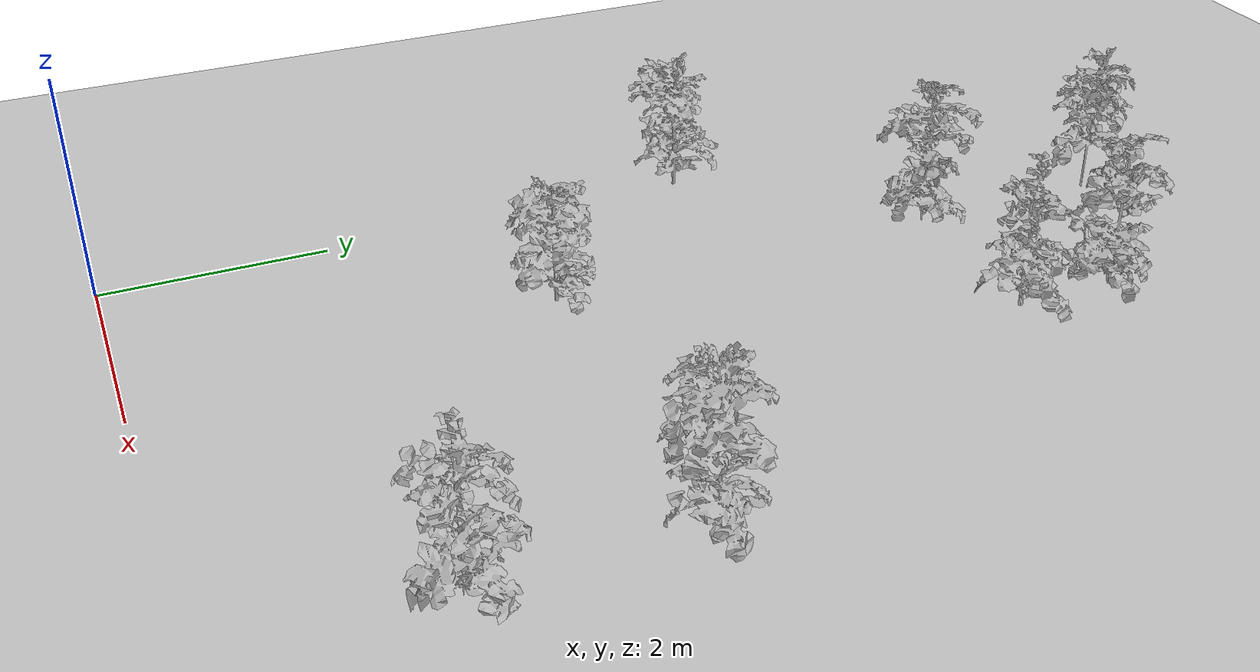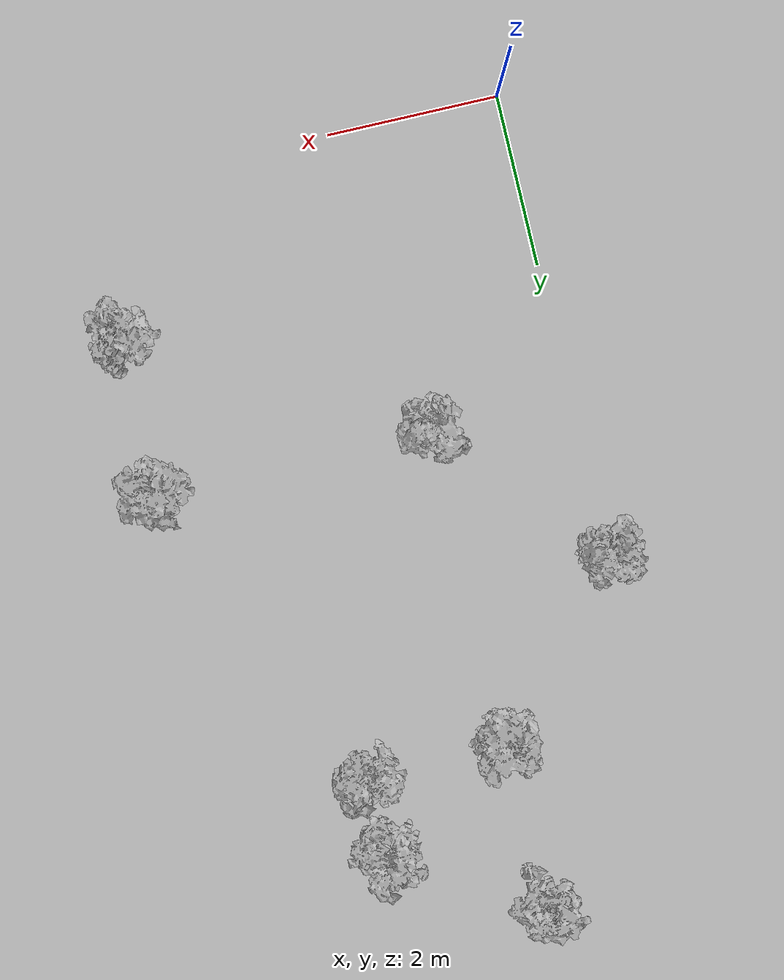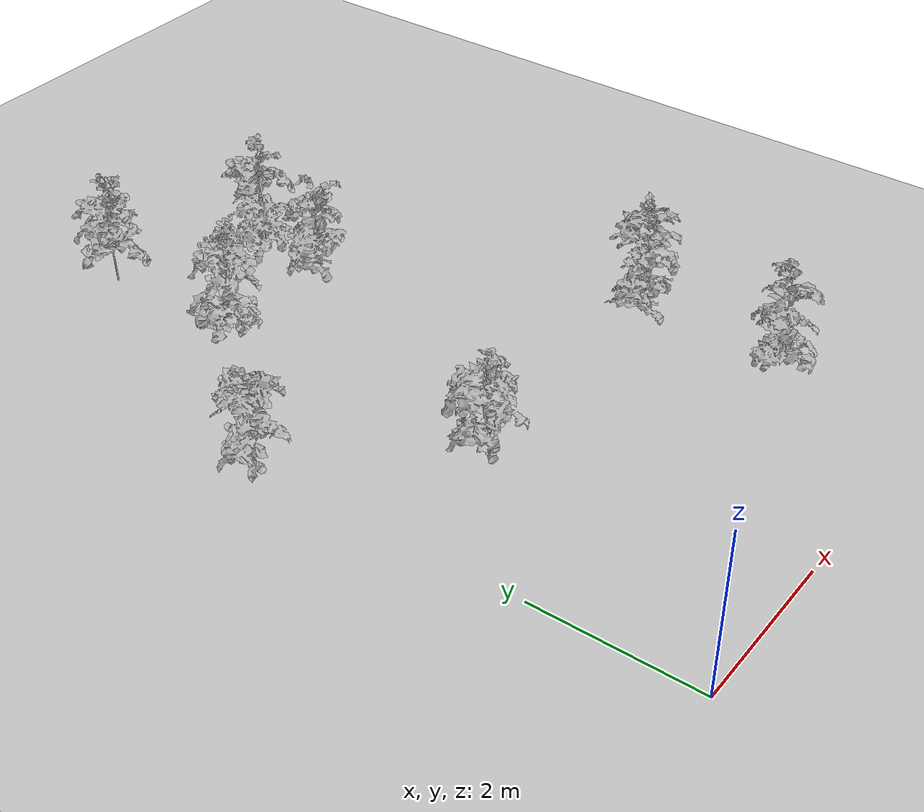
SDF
<sdf version="1.6">
 <world name="field">
  <atmosphere type="adiabatic"/>
  <gravity>0 0 -9.8</gravity>
  <physics name="default_physics" type="ode">
   <max_step_size>0.001</max_step_size>
   <real_time_factor>1</real_time_factor>
   <real_time_update_rate>1000</real_time_update_rate>
  </physics>
  <light name="sun" type="directional">
   <pose>0 0 10 0 0 0</pose>
   <diffuse>0.8 0.8 0.8 1</diffuse>
   <specular>0.8 0.8 0.8 1</specular>
   <attenuation>
    <range>1000</range>
    <constant>0.9</constant>
    <linear>0.01</linear>
    <quadratic>0.001</quadratic>
   </attenuation>
   <direction>-0.5 0.1 -0.9</direction>
  </light>
  <spherical_coordinates>
   <surface_model>EARTH_WGS84</surface_model>
   <latitude_deg>0</latitude_deg>
   <longitude_deg>0</longitude_deg>
   <elevation>0</elevation>
   <heading_deg>0</heading_deg>
  </spherical_coordinates>
  <scene><ambient>1 1 1 1</ambient><background>0.8 0.8 0.8 1</background><shadows>1</shadows></scene>
  <include><uri>model://ground</uri><name>ground</name><pose>5.0 5.0 0 0 0 0</pose></include>
  <include><uri>model://tomato_6</uri><name>tomato_6</name><pose>0.0 5.4 0 0 0 0</pose></include>
  <include><uri>model://tomato_16</uri><name>tomato_16</name><pose>1.6 3.6 0 0 0 0</pose></include>
  <include><uri>model://tomato_20</uri><name>tomato_20</name><pose>1.6 7.2 0 0 0 0</pose></include>
  <include><uri>model://tomato_22</uri><name>tomato_22</name><pose>1.6 9.0 0 0 0 0</pose></include>
  <include><uri>model://tomato_32</uri><name>tomato_32</name><pose>3.2 7.2 0 0 0 0</pose></include>
  <include><uri>model://tomato_33</uri><name>tomato_33</name><pose>3.2 8.1 0 0 0 0</pose></include>
  <include><uri>model://tomato_38</uri><name>tomato_38</name><pose>4.8 1.8 0 0 0 0</pose></include>
  <include><uri>model://tomato_40</uri><name>tomato_40</name><pose>4.8 3.6 0 0 0 0</pose></include>
 </world>
</sdf>

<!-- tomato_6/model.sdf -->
<sdf version="1.6">
  <model name="tomato_6">
    <static>true</static>
    <link name="link">
      <collision name="collision">
        <geometry>
          <box>
            <size>0.1 0.1 1</size>
          </box>
        </geometry>
      </collision>
      <visual name="branch">
        <geometry>
          <mesh>
            <uri>model://tomato_6/meshes/tomato.dae</uri>
            <submesh>
              <name>Branch1</name>
            </submesh>
          </mesh>
        </geometry>
        <material>
          <script>
            <uri>model://tomato_6/materials/scripts</uri>
            <name>Tomato/AG15brn1</name>
          </script>
        </material>
      </visual>
      <visual name="leaf1">
        <geometry>
          <mesh>
            <uri>model://tomato_6/meshes/tomato.dae</uri>
            <submesh>
              <name>Leaf1</name>
            </submesh>
          </mesh>
        </geometry>
        <material>
          <script>
            <uri>model://tomato_6/materials/scripts</uri>
            <name>Tomato/AG15lef1</name>
          </script>
        </material>
      </visual>
      <visual name="leaf2">
        <geometry>
          <mesh>
            <uri>model://tomato_6/meshes/tomato.dae</uri>
            <submesh>
              <name>Leaf2</name>
            </submesh>
          </mesh>
        </geometry>
        <material>
          <script>
            <uri>model://tomato_6/materials/scripts</uri>
            <name>Tomato/AG15lef2</name>
          </script>
        </material>
      </visual>
      <visual name="fruit1">
        <geometry>
          <mesh>
            <uri>model://tomato_6/meshes/tomato.dae</uri>
            <submesh>
              <name>Fruit1</name>
            </submesh>
          </mesh>
        </geometry>
        <material>
          <script>
            <uri>model://tomato_6/materials/scripts</uri>
            <name>Tomato/AG15frt1</name>
          </script>
        </material>
      </visual>
      <visual name="fruit2">
        <geometry>
          <mesh>
            <uri>model://tomato_6/meshes/tomato.dae</uri>
            <submesh>
              <name>Fruit2</name>
            </submesh>
          </mesh>
        </geometry>
        <material>
          <script>
            <uri>model://tomato_6/materials/scripts</uri>
            <name>Tomato/AG15frt2</name>
          </script>
        </material>
      </visual>
      <visual name="fruit3">
        <geometry>
          <mesh>
            <uri>model://tomato_6/meshes/tomato.dae</uri>
            <submesh>
              <name>Fruit3</name>
            </submesh>
          </mesh>
        </geometry>
        <material>
          <script>
            <uri>model://tomato_6/materials/scripts</uri>
            <name>Tomato/AG15frt3</name>
          </script>
        </material>
      </visual>
      <visual name="fruit4">
        <geometry>
          <mesh>
            <uri>model://tomato_6/meshes/tomato.dae</uri>
            <submesh>
              <name>Fruit4</name>
            </submesh>
          </mesh>
        </geometry>
        <material>
          <script>
            <uri>model://tomato_6/materials/scripts</uri>
            <name>Tomato/AG15frt4</name>
          </script>
        </material>
      </visual>
      <visual name="blossom1">
        <geometry>
          <mesh>
            <uri>model://tomato_6/meshes/tomato.dae</uri>
            <submesh>
              <name>Blossom1</name>
            </submesh>
          </mesh>
        </geometry>
        <material>
          <script>
            <uri>model://tomato_6/materials/scripts</uri>
            <name>Tomato/AG15blo1</name>
          </script>
        </material>
      </visual>
      <visual name="blossom2">
        <geometry>
          <mesh>
            <uri>model://tomato_6/meshes/tomato.dae</uri>
            <submesh>
              <name>Blossom2</name>
            </submesh>
          </mesh>
        </geometry>
        <material>
          <script>
            <uri>model://tomato_6/materials/scripts</uri>
            <name>Tomato/AG15blo2</name>
          </script>
        </material>
      </visual>
      <visual name="blossom3">
        <geometry>
          <mesh>
            <uri>model://tomato_6/meshes/tomato.dae</uri>
            <submesh>
              <name>Blossom3</name>
            </submesh>
          </mesh>
        </geometry>
        <material>
          <script>
            <uri>model://tomato_6/materials/scripts</uri>
            <name>Tomato/AG15blo3</name>
          </script>
        </material>
      </visual>
    </link>
  </model>
</sdf>

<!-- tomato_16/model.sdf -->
<sdf version="1.6">
  <model name="tomato_16">
    <static>true</static>
    <link name="link">
      <collision name="collision">
        <geometry>
          <box>
            <size>0.1 0.1 1</size>
          </box>
        </geometry>
      </collision>
      <visual name="branch">
        <geometry>
          <mesh>
            <uri>model://tomato_16/meshes/tomato.dae</uri>
            <submesh>
              <name>Branch1</name>
            </submesh>
          </mesh>
        </geometry>
        <material>
          <script>
            <uri>model://tomato_16/materials/scripts</uri>
            <name>Tomato/AG15brn1</name>
          </script>
        </material>
      </visual>
      <visual name="leaf1">
        <geometry>
          <mesh>
            <uri>model://tomato_16/meshes/tomato.dae</uri>
            <submesh>
              <name>Leaf1</name>
            </submesh>
          </mesh>
        </geometry>
        <material>
          <script>
            <uri>model://tomato_16/materials/scripts</uri>
            <name>Tomato/AG15lef1</name>
          </script>
        </material>
      </visual>
      <visual name="leaf2">
        <geometry>
          <mesh>
            <uri>model://tomato_16/meshes/tomato.dae</uri>
            <submesh>
              <name>Leaf2</name>
            </submesh>
          </mesh>
        </geometry>
        <material>
          <script>
            <uri>model://tomato_16/materials/scripts</uri>
            <name>Tomato/AG15lef2</name>
          </script>
        </material>
      </visual>
      <visual name="fruit1">
        <geometry>
          <mesh>
            <uri>model://tomato_16/meshes/tomato.dae</uri>
            <submesh>
              <name>Fruit1</name>
            </submesh>
          </mesh>
        </geometry>
        <material>
          <script>
            <uri>model://tomato_16/materials/scripts</uri>
            <name>Tomato/AG15frt1</name>
          </script>
        </material>
      </visual>
      <visual name="fruit2">
        <geometry>
          <mesh>
            <uri>model://tomato_16/meshes/tomato.dae</uri>
            <submesh>
              <name>Fruit2</name>
            </submesh>
          </mesh>
        </geometry>
        <material>
          <script>
            <uri>model://tomato_16/materials/scripts</uri>
            <name>Tomato/AG15frt2</name>
          </script>
        </material>
      </visual>
      <visual name="fruit3">
        <geometry>
          <mesh>
            <uri>model://tomato_16/meshes/tomato.dae</uri>
            <submesh>
              <name>Fruit3</name>
            </submesh>
          </mesh>
        </geometry>
        <material>
          <script>
            <uri>model://tomato_16/materials/scripts</uri>
            <name>Tomato/AG15frt3</name>
          </script>
        </material>
      </visual>
      <visual name="fruit4">
        <geometry>
          <mesh>
            <uri>model://tomato_16/meshes/tomato.dae</uri>
            <submesh>
              <name>Fruit4</name>
            </submesh>
          </mesh>
        </geometry>
        <material>
          <script>
            <uri>model://tomato_16/materials/scripts</uri>
            <name>Tomato/AG15frt4</name>
          </script>
        </material>
      </visual>
      <visual name="blossom1">
        <geometry>
          <mesh>
            <uri>model://tomato_16/meshes/tomato.dae</uri>
            <submesh>
              <name>Blossom1</name>
            </submesh>
          </mesh>
        </geometry>
        <material>
          <script>
            <uri>model://tomato_16/materials/scripts</uri>
            <name>Tomato/AG15blo1</name>
          </script>
        </material>
      </visual>
      <visual name="blossom2">
        <geometry>
          <mesh>
            <uri>model://tomato_16/meshes/tomato.dae</uri>
            <submesh>
              <name>Blossom2</name>
            </submesh>
          </mesh>
        </geometry>
        <material>
          <script>
            <uri>model://tomato_16/materials/scripts</uri>
            <name>Tomato/AG15blo2</name>
          </script>
        </material>
      </visual>
      <visual name="blossom3">
        <geometry>
          <mesh>
            <uri>model://tomato_16/meshes/tomato.dae</uri>
            <submesh>
              <name>Blossom3</name>
            </submesh>
          </mesh>
        </geometry>
        <material>
          <script>
            <uri>model://tomato_16/materials/scripts</uri>
            <name>Tomato/AG15blo3</name>
          </script>
        </material>
      </visual>
    </link>
  </model>
</sdf>

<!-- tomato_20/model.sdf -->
<sdf version="1.6">
  <model name="tomato_20">
    <static>true</static>
    <link name="link">
      <collision name="collision">
        <geometry>
          <box>
            <size>0.1 0.1 1</size>
          </box>
        </geometry>
      </collision>
      <visual name="branch">
        <geometry>
          <mesh>
            <uri>model://tomato_20/meshes/tomato.dae</uri>
            <submesh>
              <name>Branch1</name>
            </submesh>
          </mesh>
        </geometry>
        <material>
          <script>
            <uri>model://tomato_20/materials/scripts</uri>
            <name>Tomato/AG15brn1</name>
          </script>
        </material>
      </visual>
      <visual name="leaf1">
        <geometry>
          <mesh>
            <uri>model://tomato_20/meshes/tomato.dae</uri>
            <submesh>
              <name>Leaf1</name>
            </submesh>
          </mesh>
        </geometry>
        <material>
          <script>
            <uri>model://tomato_20/materials/scripts</uri>
            <name>Tomato/AG15lef1</name>
          </script>
        </material>
      </visual>
      <visual name="leaf2">
        <geometry>
          <mesh>
            <uri>model://tomato_20/meshes/tomato.dae</uri>
            <submesh>
              <name>Leaf2</name>
            </submesh>
          </mesh>
        </geometry>
        <material>
          <script>
            <uri>model://tomato_20/materials/scripts</uri>
            <name>Tomato/AG15lef2</name>
          </script>
        </material>
      </visual>
      <visual name="fruit1">
        <geometry>
          <mesh>
            <uri>model://tomato_20/meshes/tomato.dae</uri>
            <submesh>
              <name>Fruit1</name>
            </submesh>
          </mesh>
        </geometry>
        <material>
          <script>
            <uri>model://tomato_20/materials/scripts</uri>
            <name>Tomato/AG15frt1</name>
          </script>
        </material>
      </visual>
      <visual name="fruit2">
        <geometry>
          <mesh>
            <uri>model://tomato_20/meshes/tomato.dae</uri>
            <submesh>
              <name>Fruit2</name>
            </submesh>
          </mesh>
        </geometry>
        <material>
          <script>
            <uri>model://tomato_20/materials/scripts</uri>
            <name>Tomato/AG15frt2</name>
          </script>
        </material>
      </visual>
      <visual name="fruit3">
        <geometry>
          <mesh>
            <uri>model://tomato_20/meshes/tomato.dae</uri>
            <submesh>
              <name>Fruit3</name>
            </submesh>
          </mesh>
        </geometry>
        <material>
          <script>
            <uri>model://tomato_20/materials/scripts</uri>
            <name>Tomato/AG15frt3</name>
          </script>
        </material>
      </visual>
      <visual name="fruit4">
        <geometry>
          <mesh>
            <uri>model://tomato_20/meshes/tomato.dae</uri>
            <submesh>
              <name>Fruit4</name>
            </submesh>
          </mesh>
        </geometry>
        <material>
          <script>
            <uri>model://tomato_20/materials/scripts</uri>
            <name>Tomato/AG15frt4</name>
          </script>
        </material>
      </visual>
      <visual name="blossom1">
        <geometry>
          <mesh>
            <uri>model://tomato_20/meshes/tomato.dae</uri>
            <submesh>
              <name>Blossom1</name>
            </submesh>
          </mesh>
        </geometry>
        <material>
          <script>
            <uri>model://tomato_20/materials/scripts</uri>
            <name>Tomato/AG15blo1</name>
          </script>
        </material>
      </visual>
      <visual name="blossom2">
        <geometry>
          <mesh>
            <uri>model://tomato_20/meshes/tomato.dae</uri>
            <submesh>
              <name>Blossom2</name>
            </submesh>
          </mesh>
        </geometry>
        <material>
          <script>
            <uri>model://tomato_20/materials/scripts</uri>
            <name>Tomato/AG15blo2</name>
          </script>
        </material>
      </visual>
      <visual name="blossom3">
        <geometry>
          <mesh>
            <uri>model://tomato_20/meshes/tomato.dae</uri>
            <submesh>
              <name>Blossom3</name>
            </submesh>
          </mesh>
        </geometry>
        <material>
          <script>
            <uri>model://tomato_20/materials/scripts</uri>
            <name>Tomato/AG15blo3</name>
          </script>
        </material>
      </visual>
    </link>
  </model>
</sdf>

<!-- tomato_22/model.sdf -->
<sdf version="1.6">
  <model name="tomato_22">
    <static>true</static>
    <link name="link">
      <collision name="collision">
        <geometry>
          <box>
            <size>0.1 0.1 1</size>
          </box>
        </geometry>
      </collision>
      <visual name="branch">
        <geometry>
          <mesh>
            <uri>model://tomato_22/meshes/tomato.dae</uri>
            <submesh>
              <name>Branch1</name>
            </submesh>
          </mesh>
        </geometry>
        <material>
          <script>
            <uri>model://tomato_22/materials/scripts</uri>
            <name>Tomato/AG15brn1</name>
          </script>
        </material>
      </visual>
      <visual name="leaf1">
        <geometry>
          <mesh>
            <uri>model://tomato_22/meshes/tomato.dae</uri>
            <submesh>
              <name>Leaf1</name>
            </submesh>
          </mesh>
        </geometry>
        <material>
          <script>
            <uri>model://tomato_22/materials/scripts</uri>
            <name>Tomato/AG15lef1</name>
          </script>
        </material>
      </visual>
      <visual name="leaf2">
        <geometry>
          <mesh>
            <uri>model://tomato_22/meshes/tomato.dae</uri>
            <submesh>
              <name>Leaf2</name>
            </submesh>
          </mesh>
        </geometry>
        <material>
          <script>
            <uri>model://tomato_22/materials/scripts</uri>
            <name>Tomato/AG15lef2</name>
          </script>
        </material>
      </visual>
      <visual name="fruit1">
        <geometry>
          <mesh>
            <uri>model://tomato_22/meshes/tomato.dae</uri>
            <submesh>
              <name>Fruit1</name>
            </submesh>
          </mesh>
        </geometry>
        <material>
          <script>
            <uri>model://tomato_22/materials/scripts</uri>
            <name>Tomato/AG15frt1</name>
          </script>
        </material>
      </visual>
      <visual name="fruit2">
        <geometry>
          <mesh>
            <uri>model://tomato_22/meshes/tomato.dae</uri>
            <submesh>
              <name>Fruit2</name>
            </submesh>
          </mesh>
        </geometry>
        <material>
          <script>
            <uri>model://tomato_22/materials/scripts</uri>
            <name>Tomato/AG15frt2</name>
          </script>
        </material>
      </visual>
      <visual name="fruit3">
        <geometry>
          <mesh>
            <uri>model://tomato_22/meshes/tomato.dae</uri>
            <submesh>
              <name>Fruit3</name>
            </submesh>
          </mesh>
        </geometry>
        <material>
          <script>
            <uri>model://tomato_22/materials/scripts</uri>
            <name>Tomato/AG15frt3</name>
          </script>
        </material>
      </visual>
      <visual name="fruit4">
        <geometry>
          <mesh>
            <uri>model://tomato_22/meshes/tomato.dae</uri>
            <submesh>
              <name>Fruit4</name>
            </submesh>
          </mesh>
        </geometry>
        <material>
          <script>
            <uri>model://tomato_22/materials/scripts</uri>
            <name>Tomato/AG15frt4</name>
          </script>
        </material>
      </visual>
      <visual name="blossom1">
        <geometry>
          <mesh>
            <uri>model://tomato_22/meshes/tomato.dae</uri>
            <submesh>
              <name>Blossom1</name>
            </submesh>
          </mesh>
        </geometry>
        <material>
          <script>
            <uri>model://tomato_22/materials/scripts</uri>
            <name>Tomato/AG15blo1</name>
          </script>
        </material>
      </visual>
      <visual name="blossom2">
        <geometry>
          <mesh>
            <uri>model://tomato_22/meshes/tomato.dae</uri>
            <submesh>
              <name>Blossom2</name>
            </submesh>
          </mesh>
        </geometry>
        <material>
          <script>
            <uri>model://tomato_22/materials/scripts</uri>
            <name>Tomato/AG15blo2</name>
          </script>
        </material>
      </visual>
      <visual name="blossom3">
        <geometry>
          <mesh>
            <uri>model://tomato_22/meshes/tomato.dae</uri>
            <submesh>
              <name>Blossom3</name>
            </submesh>
          </mesh>
        </geometry>
        <material>
          <script>
            <uri>model://tomato_22/materials/scripts</uri>
            <name>Tomato/AG15blo3</name>
          </script>
        </material>
      </visual>
    </link>
  </model>
</sdf>

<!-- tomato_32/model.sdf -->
<sdf version="1.6">
  <model name="tomato_32">
    <static>true</static>
    <link name="link">
      <collision name="collision">
        <geometry>
          <box>
            <size>0.1 0.1 1</size>
          </box>
        </geometry>
      </collision>
      <visual name="branch">
        <geometry>
          <mesh>
            <uri>model://tomato_32/meshes/tomato.dae</uri>
            <submesh>
              <name>Branch1</name>
            </submesh>
          </mesh>
        </geometry>
        <material>
          <script>
            <uri>model://tomato_32/materials/scripts</uri>
            <name>Tomato/AG15brn1</name>
          </script>
        </material>
      </visual>
      <visual name="leaf1">
        <geometry>
          <mesh>
            <uri>model://tomato_32/meshes/tomato.dae</uri>
            <submesh>
              <name>Leaf1</name>
            </submesh>
          </mesh>
        </geometry>
        <material>
          <script>
            <uri>model://tomato_32/materials/scripts</uri>
            <name>Tomato/AG15lef1</name>
          </script>
        </material>
      </visual>
      <visual name="leaf2">
        <geometry>
          <mesh>
            <uri>model://tomato_32/meshes/tomato.dae</uri>
            <submesh>
              <name>Leaf2</name>
            </submesh>
          </mesh>
        </geometry>
        <material>
          <script>
            <uri>model://tomato_32/materials/scripts</uri>
            <name>Tomato/AG15lef2</name>
          </script>
        </material>
      </visual>
      <visual name="fruit1">
        <geometry>
          <mesh>
            <uri>model://tomato_32/meshes/tomato.dae</uri>
            <submesh>
              <name>Fruit1</name>
            </submesh>
          </mesh>
        </geometry>
        <material>
          <script>
            <uri>model://tomato_32/materials/scripts</uri>
            <name>Tomato/AG15frt1</name>
          </script>
        </material>
      </visual>
      <visual name="fruit2">
        <geometry>
          <mesh>
            <uri>model://tomato_32/meshes/tomato.dae</uri>
            <submesh>
              <name>Fruit2</name>
            </submesh>
          </mesh>
        </geometry>
        <material>
          <script>
            <uri>model://tomato_32/materials/scripts</uri>
            <name>Tomato/AG15frt2</name>
          </script>
        </material>
      </visual>
      <visual name="fruit3">
        <geometry>
          <mesh>
            <uri>model://tomato_32/meshes/tomato.dae</uri>
            <submesh>
              <name>Fruit3</name>
            </submesh>
          </mesh>
        </geometry>
        <material>
          <script>
            <uri>model://tomato_32/materials/scripts</uri>
            <name>Tomato/AG15frt3</name>
          </script>
        </material>
      </visual>
      <visual name="fruit4">
        <geometry>
          <mesh>
            <uri>model://tomato_32/meshes/tomato.dae</uri>
            <submesh>
              <name>Fruit4</name>
            </submesh>
          </mesh>
        </geometry>
        <material>
          <script>
            <uri>model://tomato_32/materials/scripts</uri>
            <name>Tomato/AG15frt4</name>
          </script>
        </material>
      </visual>
      <visual name="blossom1">
        <geometry>
          <mesh>
            <uri>model://tomato_32/meshes/tomato.dae</uri>
            <submesh>
              <name>Blossom1</name>
            </submesh>
          </mesh>
        </geometry>
        <material>
          <script>
            <uri>model://tomato_32/materials/scripts</uri>
            <name>Tomato/AG15blo1</name>
          </script>
        </material>
      </visual>
      <visual name="blossom2">
        <geometry>
          <mesh>
            <uri>model://tomato_32/meshes/tomato.dae</uri>
            <submesh>
              <name>Blossom2</name>
            </submesh>
          </mesh>
        </geometry>
        <material>
          <script>
            <uri>model://tomato_32/materials/scripts</uri>
            <name>Tomato/AG15blo2</name>
          </script>
        </material>
      </visual>
      <visual name="blossom3">
        <geometry>
          <mesh>
            <uri>model://tomato_32/meshes/tomato.dae</uri>
            <submesh>
              <name>Blossom3</name>
            </submesh>
          </mesh>
        </geometry>
        <material>
          <script>
            <uri>model://tomato_32/materials/scripts</uri>
            <name>Tomato/AG15blo3</name>
          </script>
        </material>
      </visual>
    </link>
  </model>
</sdf>

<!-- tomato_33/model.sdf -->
<sdf version="1.6">
  <model name="tomato_33">
    <static>true</static>
    <link name="link">
      <collision name="collision">
        <geometry>
          <box>
            <size>0.1 0.1 1</size>
          </box>
        </geometry>
      </collision>
      <visual name="branch">
        <geometry>
          <mesh>
            <uri>model://tomato_33/meshes/tomato.dae</uri>
            <submesh>
              <name>Branch1</name>
            </submesh>
          </mesh>
        </geometry>
        <material>
          <script>
            <uri>model://tomato_33/materials/scripts</uri>
            <name>Tomato/AG15brn1</name>
          </script>
        </material>
      </visual>
      <visual name="leaf1">
        <geometry>
          <mesh>
            <uri>model://tomato_33/meshes/tomato.dae</uri>
            <submesh>
              <name>Leaf1</name>
            </submesh>
          </mesh>
        </geometry>
        <material>
          <script>
            <uri>model://tomato_33/materials/scripts</uri>
            <name>Tomato/AG15lef1</name>
          </script>
        </material>
      </visual>
      <visual name="leaf2">
        <geometry>
          <mesh>
            <uri>model://tomato_33/meshes/tomato.dae</uri>
            <submesh>
              <name>Leaf2</name>
            </submesh>
          </mesh>
        </geometry>
        <material>
          <script>
            <uri>model://tomato_33/materials/scripts</uri>
            <name>Tomato/AG15lef2</name>
          </script>
        </material>
      </visual>
      <visual name="fruit1">
        <geometry>
          <mesh>
            <uri>model://tomato_33/meshes/tomato.dae</uri>
            <submesh>
              <name>Fruit1</name>
            </submesh>
          </mesh>
        </geometry>
        <material>
          <script>
            <uri>model://tomato_33/materials/scripts</uri>
            <name>Tomato/AG15frt1</name>
          </script>
        </material>
      </visual>
      <visual name="fruit2">
        <geometry>
          <mesh>
            <uri>model://tomato_33/meshes/tomato.dae</uri>
            <submesh>
              <name>Fruit2</name>
            </submesh>
          </mesh>
        </geometry>
        <material>
          <script>
            <uri>model://tomato_33/materials/scripts</uri>
            <name>Tomato/AG15frt2</name>
          </script>
        </material>
      </visual>
      <visual name="fruit3">
        <geometry>
          <mesh>
            <uri>model://tomato_33/meshes/tomato.dae</uri>
            <submesh>
              <name>Fruit3</name>
            </submesh>
          </mesh>
        </geometry>
        <material>
          <script>
            <uri>model://tomato_33/materials/scripts</uri>
            <name>Tomato/AG15frt3</name>
          </script>
        </material>
      </visual>
      <visual name="fruit4">
        <geometry>
          <mesh>
            <uri>model://tomato_33/meshes/tomato.dae</uri>
            <submesh>
              <name>Fruit4</name>
            </submesh>
          </mesh>
        </geometry>
        <material>
          <script>
            <uri>model://tomato_33/materials/scripts</uri>
            <name>Tomato/AG15frt4</name>
          </script>
        </material>
      </visual>
      <visual name="blossom1">
        <geometry>
          <mesh>
            <uri>model://tomato_33/meshes/tomato.dae</uri>
            <submesh>
              <name>Blossom1</name>
            </submesh>
          </mesh>
        </geometry>
        <material>
          <script>
            <uri>model://tomato_33/materials/scripts</uri>
            <name>Tomato/AG15blo1</name>
          </script>
        </material>
      </visual>
      <visual name="blossom2">
        <geometry>
          <mesh>
            <uri>model://tomato_33/meshes/tomato.dae</uri>
            <submesh>
              <name>Blossom2</name>
            </submesh>
          </mesh>
        </geometry>
        <material>
          <script>
            <uri>model://tomato_33/materials/scripts</uri>
            <name>Tomato/AG15blo2</name>
          </script>
        </material>
      </visual>
      <visual name="blossom3">
        <geometry>
          <mesh>
            <uri>model://tomato_33/meshes/tomato.dae</uri>
            <submesh>
              <name>Blossom3</name>
            </submesh>
          </mesh>
        </geometry>
        <material>
          <script>
            <uri>model://tomato_33/materials/scripts</uri>
            <name>Tomato/AG15blo3</name>
          </script>
        </material>
      </visual>
    </link>
  </model>
</sdf>

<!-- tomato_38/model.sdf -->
<sdf version="1.6">
  <model name="tomato_38">
    <static>true</static>
    <link name="link">
      <collision name="collision">
        <geometry>
          <box>
            <size>0.1 0.1 1</size>
          </box>
        </geometry>
      </collision>
      <visual name="branch">
        <geometry>
          <mesh>
            <uri>model://tomato_38/meshes/tomato.dae</uri>
            <submesh>
              <name>Branch1</name>
            </submesh>
          </mesh>
        </geometry>
        <material>
          <script>
            <uri>model://tomato_38/materials/scripts</uri>
            <name>Tomato/AG15brn1</name>
          </script>
        </material>
      </visual>
      <visual name="leaf1">
        <geometry>
          <mesh>
            <uri>model://tomato_38/meshes/tomato.dae</uri>
            <submesh>
              <name>Leaf1</name>
            </submesh>
          </mesh>
        </geometry>
        <material>
          <script>
            <uri>model://tomato_38/materials/scripts</uri>
            <name>Tomato/AG15lef1</name>
          </script>
        </material>
      </visual>
      <visual name="leaf2">
        <geometry>
          <mesh>
            <uri>model://tomato_38/meshes/tomato.dae</uri>
            <submesh>
              <name>Leaf2</name>
            </submesh>
          </mesh>
        </geometry>
        <material>
          <script>
            <uri>model://tomato_38/materials/scripts</uri>
            <name>Tomato/AG15lef2</name>
          </script>
        </material>
      </visual>
      <visual name="fruit1">
        <geometry>
          <mesh>
            <uri>model://tomato_38/meshes/tomato.dae</uri>
            <submesh>
              <name>Fruit1</name>
            </submesh>
          </mesh>
        </geometry>
        <material>
          <script>
            <uri>model://tomato_38/materials/scripts</uri>
            <name>Tomato/AG15frt1</name>
          </script>
        </material>
      </visual>
      <visual name="fruit2">
        <geometry>
          <mesh>
            <uri>model://tomato_38/meshes/tomato.dae</uri>
            <submesh>
              <name>Fruit2</name>
            </submesh>
          </mesh>
        </geometry>
        <material>
          <script>
            <uri>model://tomato_38/materials/scripts</uri>
            <name>Tomato/AG15frt2</name>
          </script>
        </material>
      </visual>
      <visual name="fruit3">
        <geometry>
          <mesh>
            <uri>model://tomato_38/meshes/tomato.dae</uri>
            <submesh>
              <name>Fruit3</name>
            </submesh>
          </mesh>
        </geometry>
        <material>
          <script>
            <uri>model://tomato_38/materials/scripts</uri>
            <name>Tomato/AG15frt3</name>
          </script>
        </material>
      </visual>
      <visual name="fruit4">
        <geometry>
          <mesh>
            <uri>model://tomato_38/meshes/tomato.dae</uri>
            <submesh>
              <name>Fruit4</name>
            </submesh>
          </mesh>
        </geometry>
        <material>
          <script>
            <uri>model://tomato_38/materials/scripts</uri>
            <name>Tomato/AG15frt4</name>
          </script>
        </material>
      </visual>
      <visual name="blossom1">
        <geometry>
          <mesh>
            <uri>model://tomato_38/meshes/tomato.dae</uri>
            <submesh>
              <name>Blossom1</name>
            </submesh>
          </mesh>
        </geometry>
        <material>
          <script>
            <uri>model://tomato_38/materials/scripts</uri>
            <name>Tomato/AG15blo1</name>
          </script>
        </material>
      </visual>
      <visual name="blossom2">
        <geometry>
          <mesh>
            <uri>model://tomato_38/meshes/tomato.dae</uri>
            <submesh>
              <name>Blossom2</name>
            </submesh>
          </mesh>
        </geometry>
        <material>
          <script>
            <uri>model://tomato_38/materials/scripts</uri>
            <name>Tomato/AG15blo2</name>
          </script>
        </material>
      </visual>
      <visual name="blossom3">
        <geometry>
          <mesh>
            <uri>model://tomato_38/meshes/tomato.dae</uri>
            <submesh>
              <name>Blossom3</name>
            </submesh>
          </mesh>
        </geometry>
        <material>
          <script>
            <uri>model://tomato_38/materials/scripts</uri>
            <name>Tomato/AG15blo3</name>
          </script>
        </material>
      </visual>
    </link>
  </model>
</sdf>

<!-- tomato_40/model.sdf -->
<sdf version="1.6">
  <model name="tomato_40">
    <static>true</static>
    <link name="link">
      <collision name="collision">
        <geometry>
          <box>
            <size>0.1 0.1 1</size>
          </box>
        </geometry>
      </collision>
      <visual name="branch">
        <geometry>
          <mesh>
            <uri>model://tomato_40/meshes/tomato.dae</uri>
            <submesh>
              <name>Branch1</name>
            </submesh>
          </mesh>
        </geometry>
        <material>
          <script>
            <uri>model://tomato_40/materials/scripts</uri>
            <name>Tomato/AG15brn1</name>
          </script>
        </material>
      </visual>
      <visual name="leaf1">
        <geometry>
          <mesh>
            <uri>model://tomato_40/meshes/tomato.dae</uri>
            <submesh>
              <name>Leaf1</name>
            </submesh>
          </mesh>
        </geometry>
        <material>
          <script>
            <uri>model://tomato_40/materials/scripts</uri>
            <name>Tomato/AG15lef1</name>
          </script>
        </material>
      </visual>
      <visual name="leaf2">
        <geometry>
          <mesh>
            <uri>model://tomato_40/meshes/tomato.dae</uri>
            <submesh>
              <name>Leaf2</name>
            </submesh>
          </mesh>
        </geometry>
        <material>
          <script>
            <uri>model://tomato_40/materials/scripts</uri>
            <name>Tomato/AG15lef2</name>
          </script>
        </material>
      </visual>
      <visual name="fruit1">
        <geometry>
          <mesh>
            <uri>model://tomato_40/meshes/tomato.dae</uri>
            <submesh>
              <name>Fruit1</name>
            </submesh>
          </mesh>
        </geometry>
        <material>
          <script>
            <uri>model://tomato_40/materials/scripts</uri>
            <name>Tomato/AG15frt1</name>
          </script>
        </material>
      </visual>
      <visual name="fruit2">
        <geometry>
          <mesh>
            <uri>model://tomato_40/meshes/tomato.dae</uri>
            <submesh>
              <name>Fruit2</name>
            </submesh>
          </mesh>
        </geometry>
        <material>
          <script>
            <uri>model://tomato_40/materials/scripts</uri>
            <name>Tomato/AG15frt2</name>
          </script>
        </material>
      </visual>
      <visual name="fruit3">
        <geometry>
          <mesh>
            <uri>model://tomato_40/meshes/tomato.dae</uri>
            <submesh>
              <name>Fruit3</name>
            </submesh>
          </mesh>
        </geometry>
        <material>
          <script>
            <uri>model://tomato_40/materials/scripts</uri>
            <name>Tomato/AG15frt3</name>
          </script>
        </material>
      </visual>
      <visual name="fruit4">
        <geometry>
          <mesh>
            <uri>model://tomato_40/meshes/tomato.dae</uri>
            <submesh>
              <name>Fruit4</name>
            </submesh>
          </mesh>
        </geometry>
        <material>
          <script>
            <uri>model://tomato_40/materials/scripts</uri>
            <name>Tomato/AG15frt4</name>
          </script>
        </material>
      </visual>
      <visual name="blossom1">
        <geometry>
          <mesh>
            <uri>model://tomato_40/meshes/tomato.dae</uri>
            <submesh>
              <name>Blossom1</name>
            </submesh>
          </mesh>
        </geometry>
        <material>
          <script>
            <uri>model://tomato_40/materials/scripts</uri>
            <name>Tomato/AG15blo1</name>
          </script>
        </material>
      </visual>
      <visual name="blossom2">
        <geometry>
          <mesh>
            <uri>model://tomato_40/meshes/tomato.dae</uri>
            <submesh>
              <name>Blossom2</name>
            </submesh>
          </mesh>
        </geometry>
        <material>
          <script>
            <uri>model://tomato_40/materials/scripts</uri>
            <name>Tomato/AG15blo2</name>
          </script>
        </material>
      </visual>
      <visual name="blossom3">
        <geometry>
          <mesh>
            <uri>model://tomato_40/meshes/tomato.dae</uri>
            <submesh>
              <name>Blossom3</name>
            </submesh>
          </mesh>
        </geometry>
        <material>
          <script>
            <uri>model://tomato_40/materials/scripts</uri>
            <name>Tomato/AG15blo3</name>
          </script>
        </material>
      </visual>
    </link>
  </model>
</sdf>
